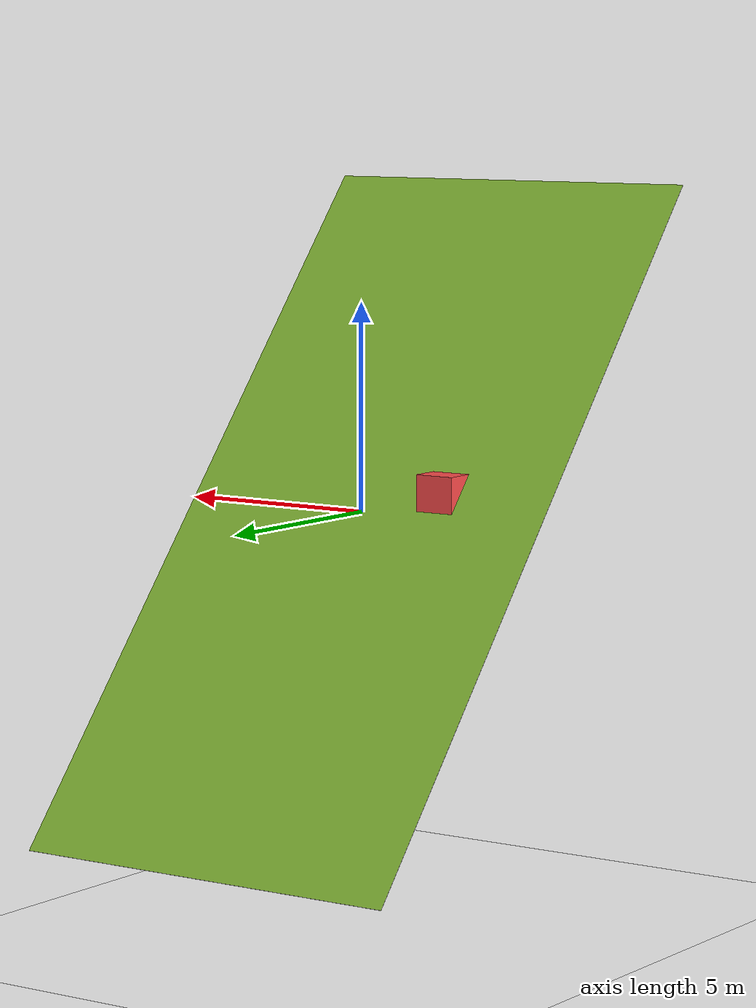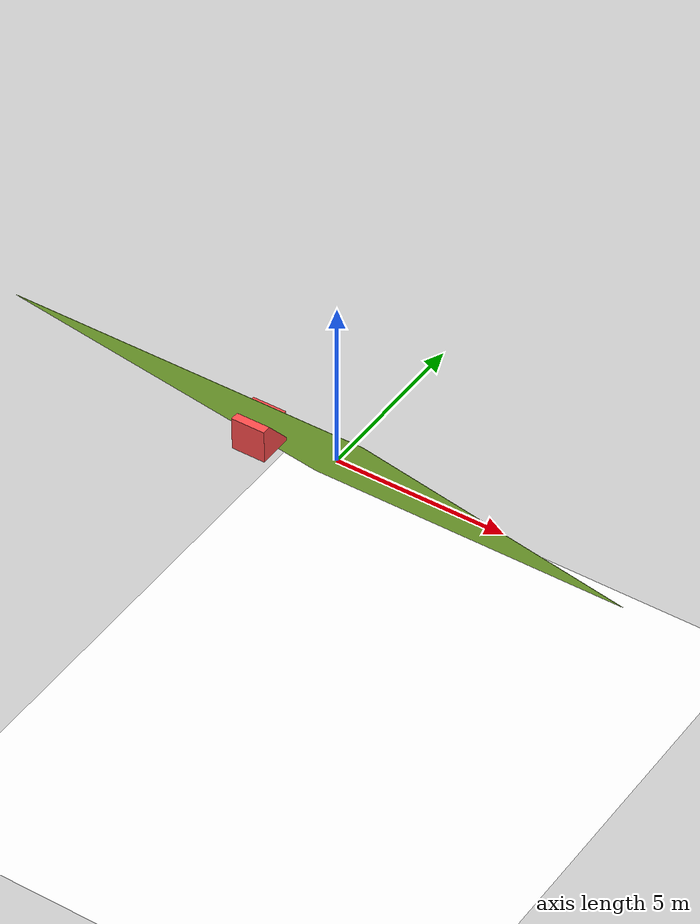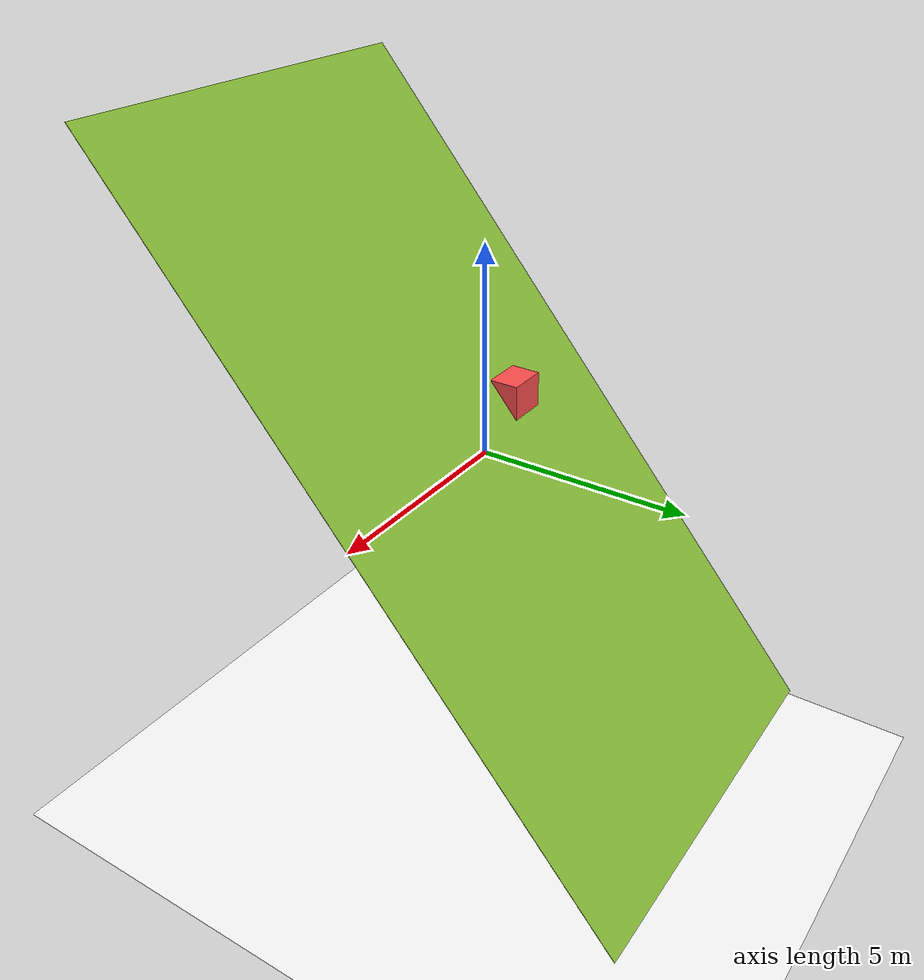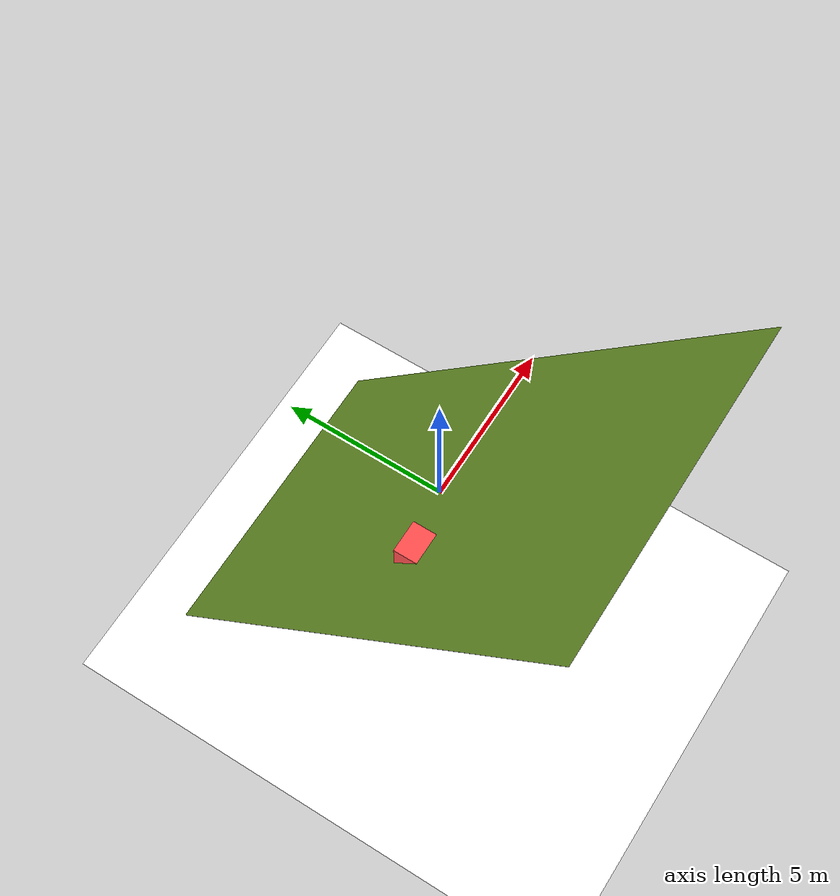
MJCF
<mujoco>
  <option gravity="0 0 -9.81"/>
  <worldbody>
    <light diffuse="0.6 0.6 0.6" pos="0 0 5" dir="0 0 -1"/>
    <body name="ground" pos="0 0 -10">
      <geom type="plane" size="50 50 0.1" rgba="1 1 1 1" friction="1 1 1"/>
    </body>
    <body name="ramp" pos="0 0 0">
      <geom type="plane" size="5 10 0.1" quat="0.4226 0.9063 0 0" rgba="0.5 0.7 0.2 1" friction="0.9 0.9 0.9"/>
    </body>
    <body name="block" pos="-2 -0.6 0.5">
      <geom type="box" size="0.5 0.5 0.5" mass="2.5" rgba="1 0.3 0.3 1"/>
      <joint type="free"/>
    </body>
  </worldbody>
</mujoco>
